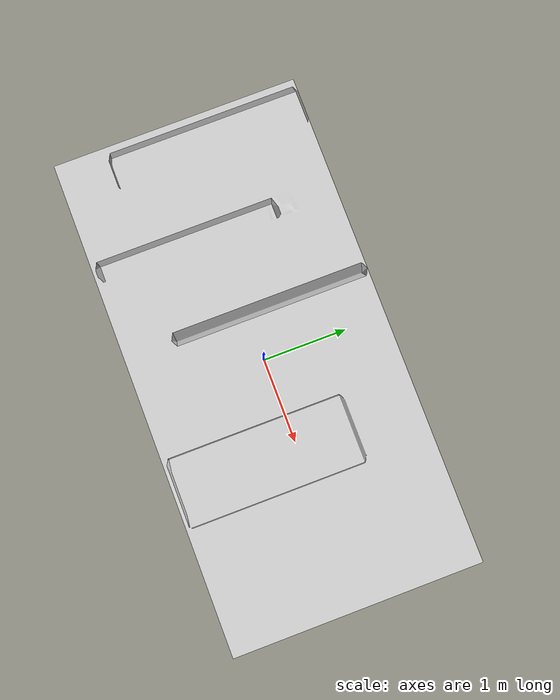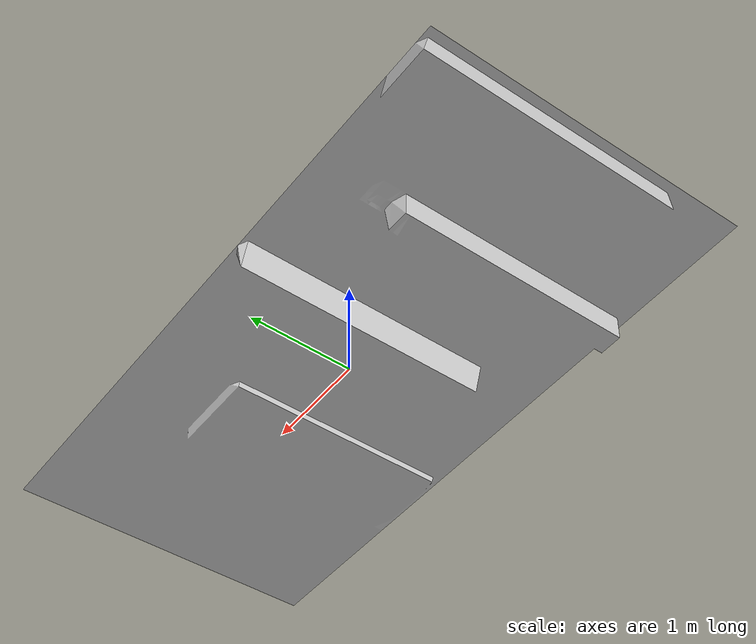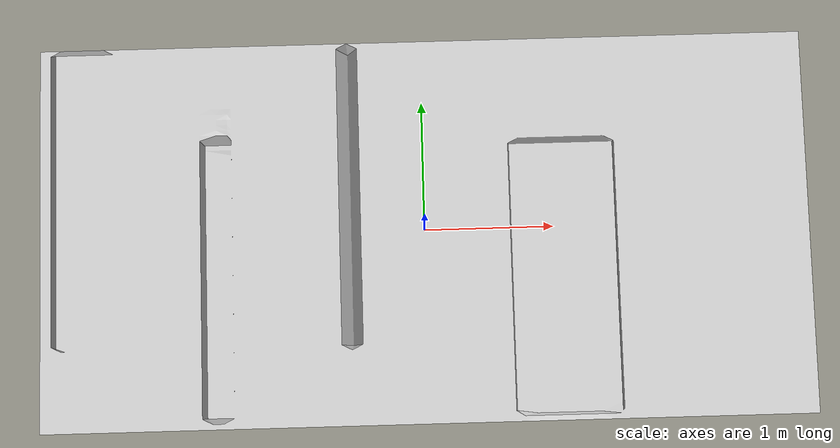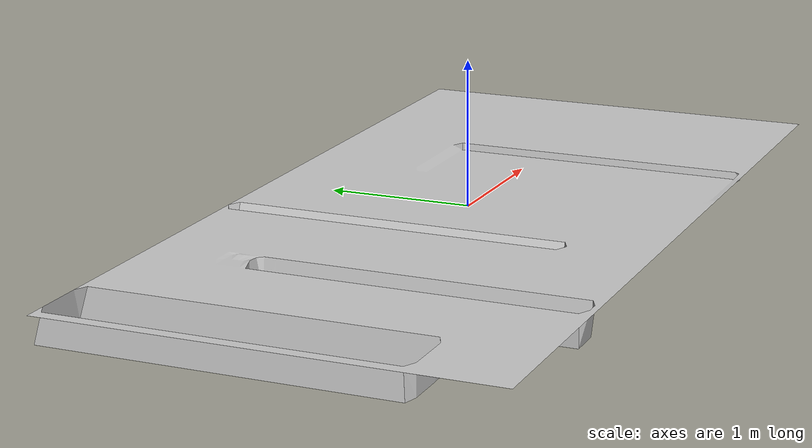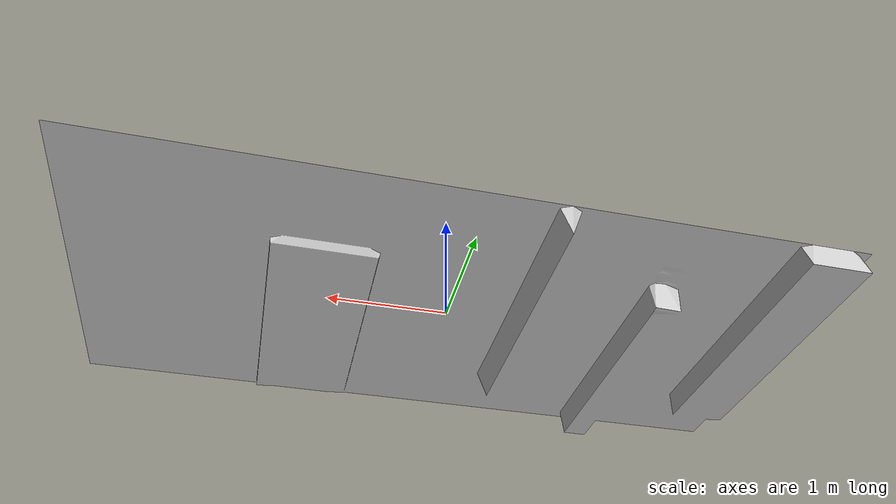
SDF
<?xml version="1.0" ?>
<sdf version="1.5">
  <model name="Hole Board Min">
    <static>true</static>
    <link name="link">
    <gravity>1</gravity>
<inertial>
    <pose>0 0 0.4 0 0 0</pose>
        <mass>500</mass>
        <inertia>
          <ixx>51.2096</ixx>
          <iyy>51.2096</iyy>
          <izz>25</izz>
          <ixy>0</ixy>
          <ixz>0</ixz>
</inertia>
</inertial>
      <collision name="collision">
        <geometry>
          <mesh>
            <scale>1 1 1</scale>
            <uri>model://hole_board_min/meshes/hole_board_min.dae</uri>
          </mesh>
        </geometry>
      </collision>
      <visual name="visual">
        <geometry>
          <mesh>
            <scale>1 1 1</scale>
            <uri>model://hole_board_min/meshes/hole_board_min.dae</uri>
          </mesh>
        </geometry>
      </visual>
    </link>
  </model>
</sdf>
